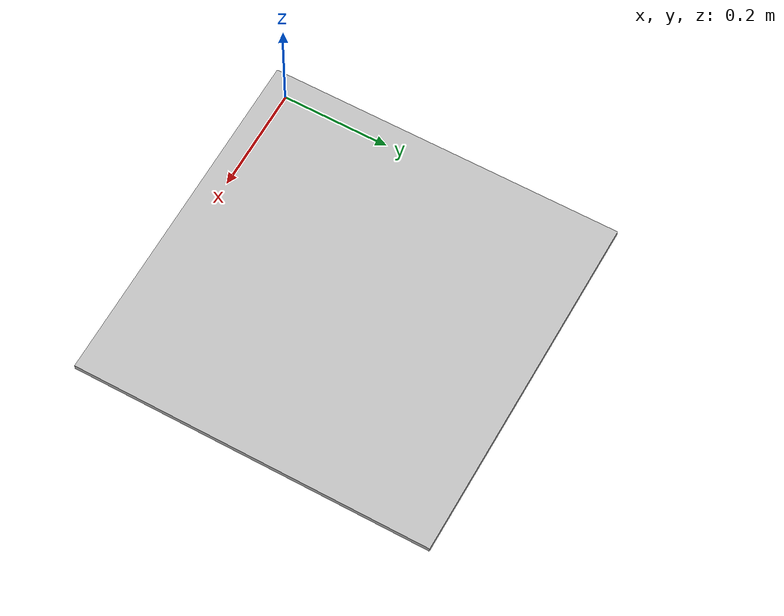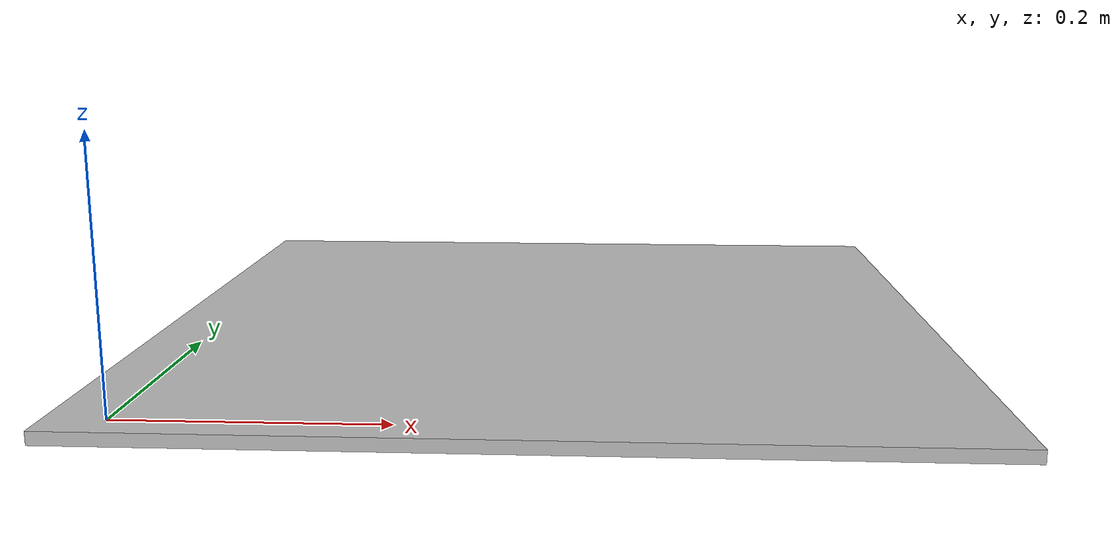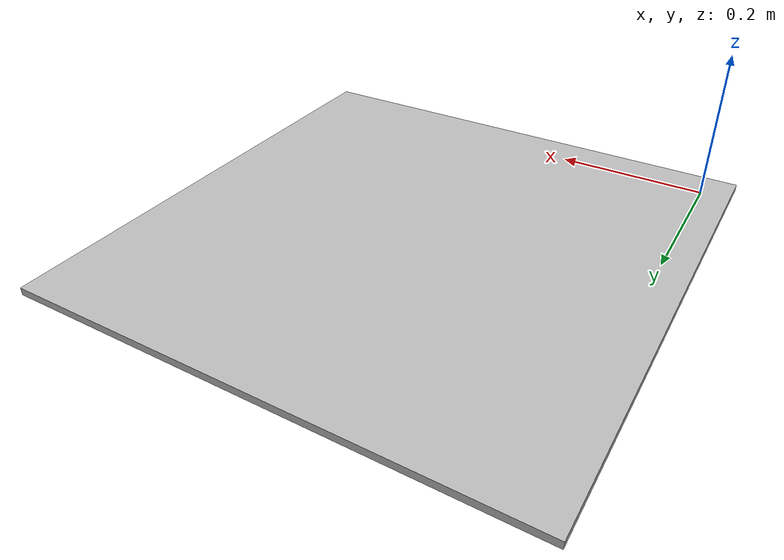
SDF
<?xml version='1.0'?>
<sdf version='1.6'>
  <model name='Apriltag6'>
    <link name='main'>
    <pose frame=''>0.2925 0.2925 0 0 0 1.570796327</pose>
      <visual name='main_Visual'>
        <geometry>
          <box>
          <size>0.6638 0.6638 0.01</size>
          </box>
        </geometry>
           <material>
          <script>
            <uri>model://Apriltag6/materials/scripts</uri>
            <uri>model://Apriltag6/materials/textures</uri>
            <name>Apriltag6</name>
          </script>
        </material>
      </visual>
      <collision name="surface">
        <pose>0 0 0 0 0 0</pose>
        <geometry>
          <box>
          <size>0.6638 0.6638 0.01</size>
          </box>
        </geometry>
      </collision>
     </link>
    <static>1</static>
  </model>
</sdf>
